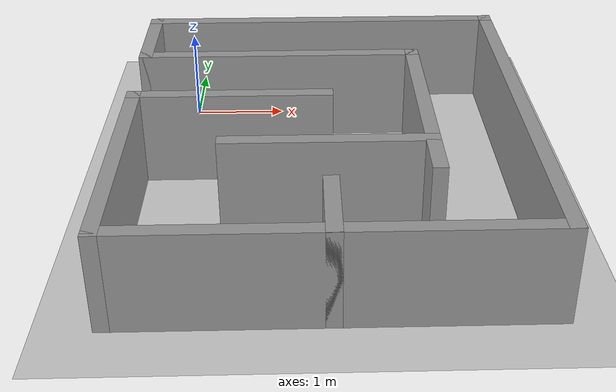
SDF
<sdf version="1.7">
 <world name="default">
  <scene><ambient>0.4 0.4 0.4 1</ambient><background>0.7 0.7 0.7 1</background><shadows>1</shadows></scene>
  <light name="sun" type="directional">
   <pose>0 0 10 0 -0 0</pose>
   <diffuse>0.8 0.8 0.8 1</diffuse>
   <specular>0.2 0.2 0.2 1</specular>
   <attenuation>
    <range>1000</range>
    <constant>0.9</constant>
    <linear>0.01</linear>
    <quadratic>0.001</quadratic>
   </attenuation>
   <direction>-0.5 0.1 -0.9</direction>
   <spot><inner_angle>0</inner_angle><outer_angle>0</outer_angle><falloff>0</falloff></spot>
  </light>
  <model name="ground_plane">
   <static>1</static>
   <link name="link">
    <collision name="collision">
     <geometry><plane><normal>0 0 1</normal><size>100 100</size></plane></geometry>
     <surface>
      <contact><collide_bitmask>65535</collide_bitmask></contact>
      <friction><ode><mu>100</mu><mu2>50</mu2></ode></friction>
     </surface>
    </collision>
    <visual name="visual">
     <cast_shadows>0</cast_shadows>
     <geometry><plane><normal>0 0 1</normal><size>100 100</size></plane></geometry>
     <material>
      <script><uri>file://media/materials/scripts/gazebo.material</uri><name>Gazebo/Grey</name></script>
     </material>
    </visual>
   </link>
  </model>
  <physics type="ode">
   <real_time_update_rate>1000</real_time_update_rate>
   <max_step_size>0.001</max_step_size>
   <real_time_factor>1</real_time_factor>
   <ode>
    <solver>
     <type>quick</type>
     <iters>150</iters>
     <precon_iters>0</precon_iters>
     <sor>1.4</sor>
     <use_dynamic_moi_rescaling>1</use_dynamic_moi_rescaling>
    </solver>
    <constraints>
     <cfm>1e-05</cfm>
     <erp>0.2</erp>
     <contact_max_correcting_vel>2000</contact_max_correcting_vel>
     <contact_surface_layer>0.01</contact_surface_layer>
    </constraints>
   </ode>
  </physics>
  <gravity>0 0 -9.8</gravity>
  <magnetic_field>6e-06 2.3e-05 -4.2e-05</magnetic_field>
  <atmosphere type="adiabatic"/>
  <spherical_coordinates>
   <surface_model>EARTH_WGS84</surface_model>
   <latitude_deg>0</latitude_deg>
   <longitude_deg>0</longitude_deg>
   <elevation>0</elevation>
   <heading_deg>0</heading_deg>
  </spherical_coordinates>
  <model name="maze_3">
   <pose>1.5 -1.75 0 0 -0 0</pose>
   <link name="Wall_0">
    <collision name="Wall_0_Collision">
     <geometry><box><size>3.15 0.15 1</size></box></geometry>
     <pose>0 0 0.5 0 -0 0</pose>
    </collision>
    <visual name="Wall_0_Visual">
     <pose>0 0 0.5 0 -0 0</pose>
     <geometry><box><size>3.15 0.15 1</size></box></geometry>
     <material>
      <script><uri>file://media/materials/scripts/gazebo.material</uri><name>Gazebo/Grey</name></script>
      <ambient>1 1 1 1</ambient>
     </material>
     <meta><layer>0</layer></meta>
    </visual>
    <pose>-0.5 1.25 0 0 -0 0</pose>
   </link>
   <link name="Wall_10">
    <collision name="Wall_10_Collision">
     <geometry><box><size>2.65 0.15 1</size></box></geometry>
     <pose>0 0 0.5 0 -0 0</pose>
    </collision>
    <visual name="Wall_10_Visual">
     <pose>0 0 0.5 0 -0 0</pose>
     <geometry><box><size>2.65 0.15 1</size></box></geometry>
     <material>
      <script><uri>file://media/materials/scripts/gazebo.material</uri><name>Gazebo/Grey</name></script>
      <ambient>1 1 1 1</ambient>
     </material>
     <meta><layer>0</layer></meta>
    </visual>
    <pose>-2 -1 0 0 -0 1.5708</pose>
   </link>
   <link name="Wall_12">
    <collision name="Wall_12_Collision">
     <geometry><box><size>2.15 0.15 1</size></box></geometry>
     <pose>0 0 0.5 0 -0 0</pose>
    </collision>
    <visual name="Wall_12_Visual">
     <pose>0 0 0.5 0 -0 0</pose>
     <geometry><box><size>2.15 0.15 1</size></box></geometry>
     <material>
      <script><uri>file://media/materials/scripts/gazebo.material</uri><name>Gazebo/Grey</name></script>
      <ambient>1 1 1 1</ambient>
     </material>
     <meta><layer>0</layer></meta>
    </visual>
    <pose>-1 0.25 0 0 -0 0</pose>
   </link>
   <link name="Wall_14">
    <collision name="Wall_14_Collision">
     <geometry><box><size>2.65 0.15 1</size></box></geometry>
     <pose>0 0 0.5 0 -0 0</pose>
    </collision>
    <visual name="Wall_14_Visual">
     <pose>0 0 0.5 0 -0 0</pose>
     <geometry><box><size>2.65 0.15 1</size></box></geometry>
     <material>
      <script><uri>file://media/materials/scripts/gazebo.material</uri><name>Gazebo/Grey</name></script>
      <ambient>1 1 1 1</ambient>
     </material>
     <meta><layer>0</layer></meta>
    </visual>
    <pose>1 0 0 0 -0 -1.5708</pose>
   </link>
   <link name="Wall_17">
    <collision name="Wall_17_Collision">
     <geometry><box><size>2.15 0.15 1</size></box></geometry>
     <pose>0 0 0.5 0 -0 0</pose>
    </collision>
    <visual name="Wall_17_Visual">
     <pose>0 0 0.5 0 -0 0</pose>
     <geometry><box><size>2.15 0.15 1</size></box></geometry>
     <material>
      <script><uri>file://media/materials/scripts/gazebo.material</uri><name>Gazebo/Grey</name></script>
      <ambient>1 1 1 1</ambient>
     </material>
     <meta><layer>0</layer></meta>
    </visual>
    <pose>-0 -0.75 0 0 -0 3.14159</pose>
   </link>
   <link name="Wall_19">
    <collision name="Wall_19_Collision">
     <geometry><box><size>0.9 0.15 1</size></box></geometry>
     <pose>0 0 0.5 0 -0 0</pose>
    </collision>
    <visual name="Wall_19_Visual">
     <pose>0 0 0.5 0 -0 0</pose>
     <geometry><box><size>0.9 0.15 1</size></box></geometry>
     <material>
      <script><uri>file://media/materials/scripts/gazebo.material</uri><name>Gazebo/Grey</name></script>
      <ambient>1 1 1 1</ambient>
     </material>
     <meta><layer>0</layer></meta>
    </visual>
    <pose>-0 -1.875 0 0 -0 -1.5708</pose>
   </link>
   <link name="Wall_2">
    <collision name="Wall_2_Collision">
     <geometry><box><size>1.15 0.15 1</size></box></geometry>
     <pose>0 0 0.5 0 -0 0</pose>
    </collision>
    <visual name="Wall_2_Visual">
     <pose>0 0 0.5 0 -0 0</pose>
     <geometry><box><size>1.15 0.15 1</size></box></geometry>
     <material>
      <script><uri>file://media/materials/scripts/gazebo.material</uri><name>Gazebo/Grey</name></script>
      <ambient>1 1 1 1</ambient>
     </material>
     <meta><layer>0</layer></meta>
    </visual>
    <pose>-2 1.75 0 0 -0 1.5708</pose>
   </link>
   <link name="Wall_4">
    <collision name="Wall_4_Collision">
     <geometry><box><size>4.15 0.15 1</size></box></geometry>
     <pose>0 0 0.5 0 -0 0</pose>
    </collision>
    <visual name="Wall_4_Visual">
     <pose>0 0 0.5 0 -0 0</pose>
     <geometry><box><size>4.15 0.15 1</size></box></geometry>
     <material>
      <script><uri>file://media/materials/scripts/gazebo.material</uri><name>Gazebo/Grey</name></script>
      <ambient>1 1 1 1</ambient>
     </material>
     <meta><layer>0</layer></meta>
    </visual>
    <pose>-0 2.25 0 0 -0 0</pose>
   </link>
   <link name="Wall_6">
    <collision name="Wall_6_Collision">
     <geometry><box><size>4.65 0.15 1</size></box></geometry>
     <pose>0 0 0.5 0 -0 0</pose>
    </collision>
    <visual name="Wall_6_Visual">
     <pose>0 0 0.5 0 -0 0</pose>
     <geometry><box><size>4.65 0.15 1</size></box></geometry>
     <material>
      <script><uri>file://media/materials/scripts/gazebo.material</uri><name>Gazebo/Grey</name></script>
      <ambient>1 1 1 1</ambient>
     </material>
     <meta><layer>0</layer></meta>
    </visual>
    <pose>2 0 0 0 -0 -1.5708</pose>
   </link>
   <link name="Wall_8">
    <collision name="Wall_8_Collision">
     <geometry><box><size>4.15 0.15 1</size></box></geometry>
     <pose>0 0 0.5 0 -0 0</pose>
    </collision>
    <visual name="Wall_8_Visual">
     <pose>0 0 0.5 0 -0 0</pose>
     <geometry><box><size>4.15 0.15 1</size></box></geometry>
     <material>
      <script><uri>file://media/materials/scripts/gazebo.material</uri><name>Gazebo/Grey</name></script>
      <ambient>1 1 1 1</ambient>
     </material>
     <meta><layer>0</layer></meta>
    </visual>
    <pose>-0 -2.25 0 0 -0 3.14159</pose>
   </link>
   <static>1</static>
  </model>
 </world>
</sdf>
